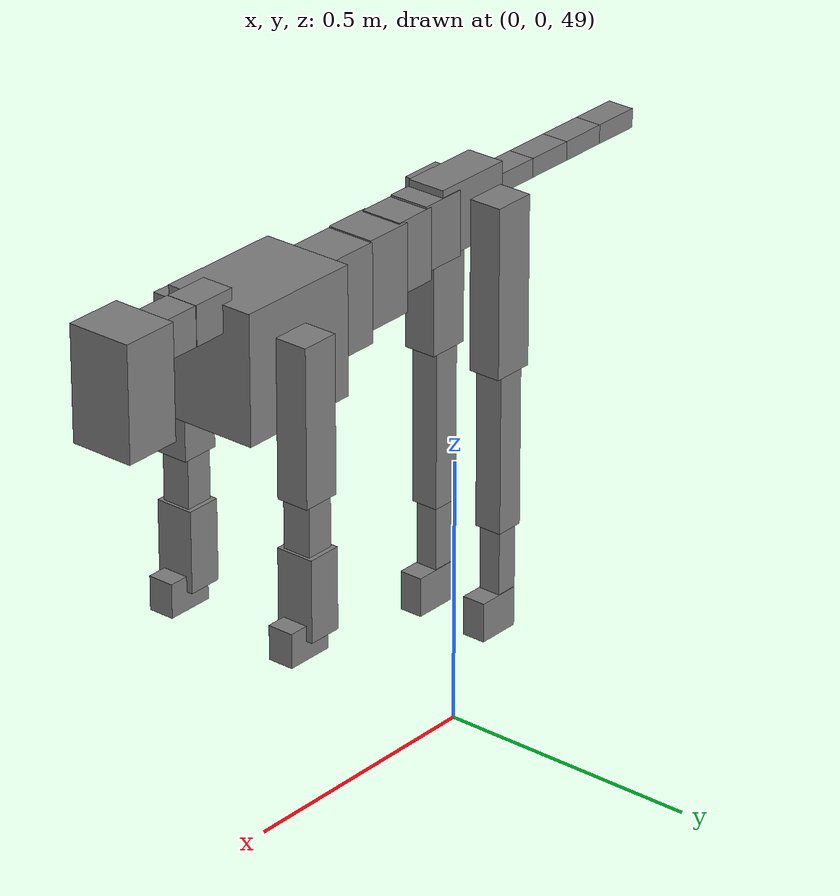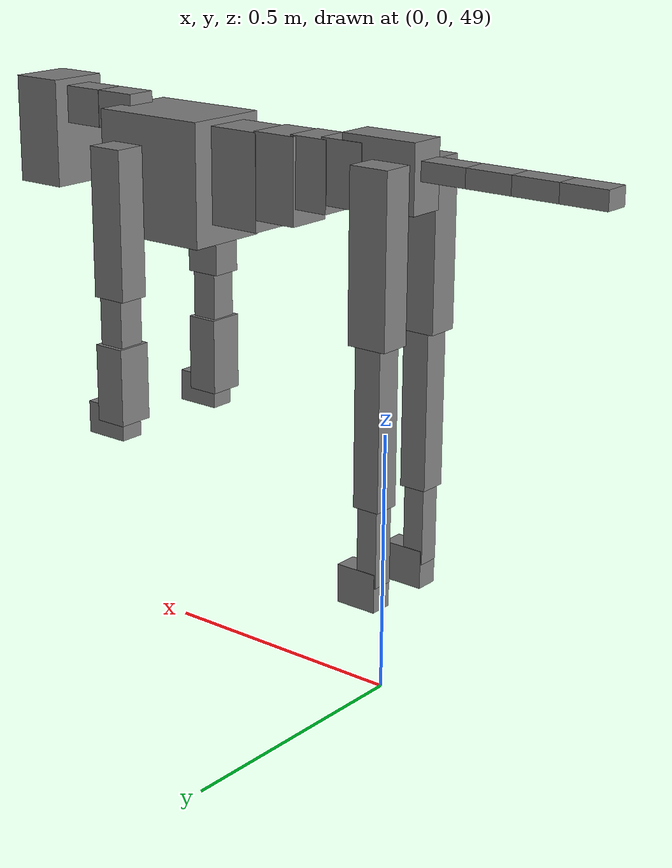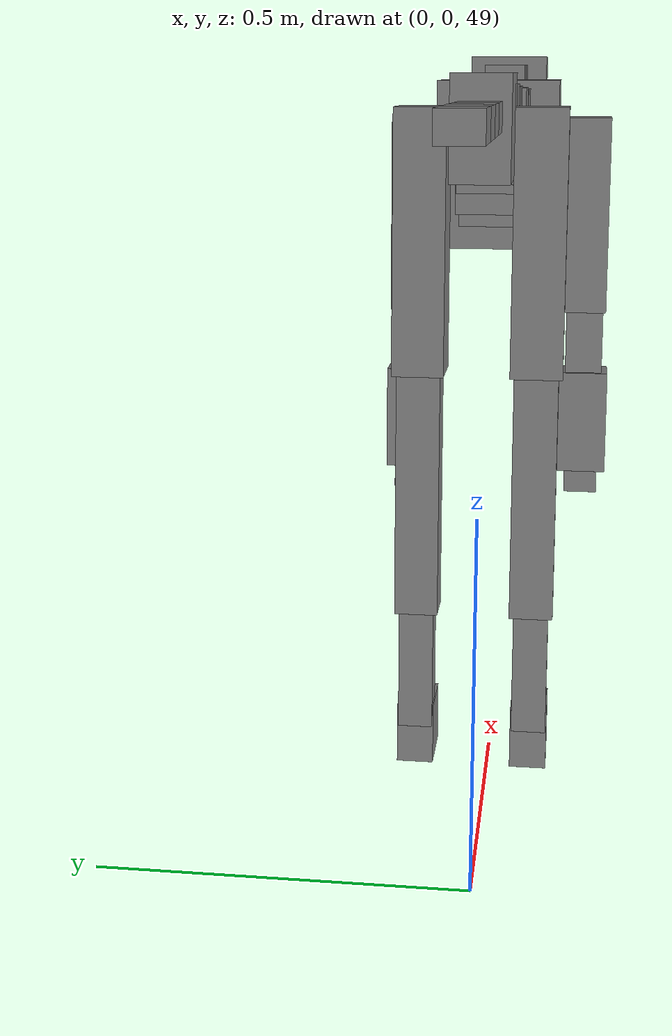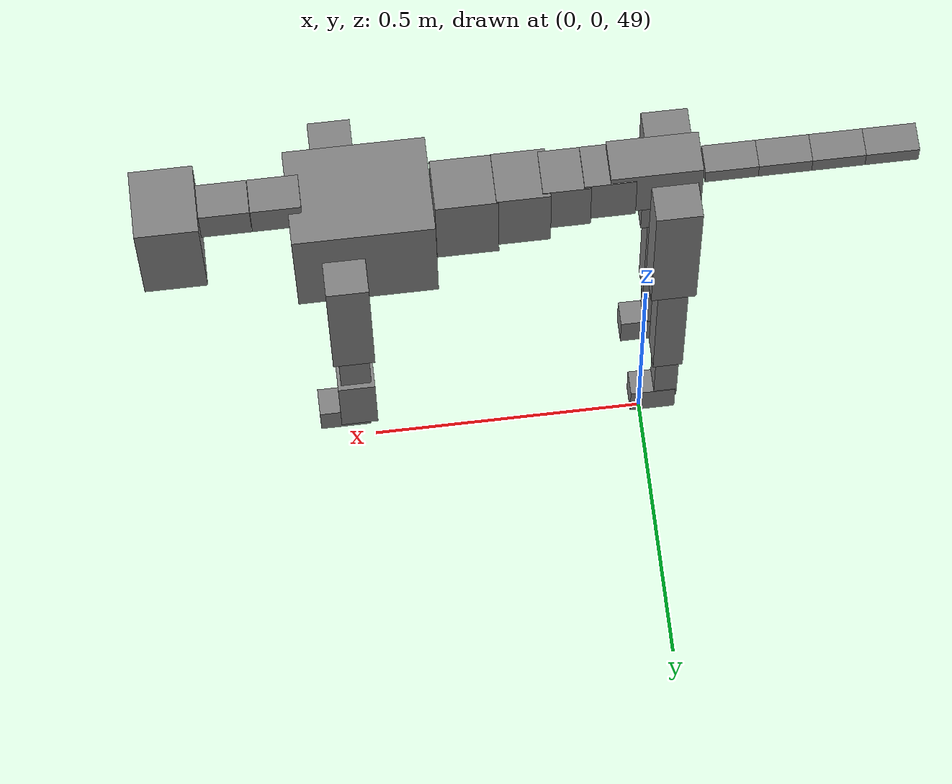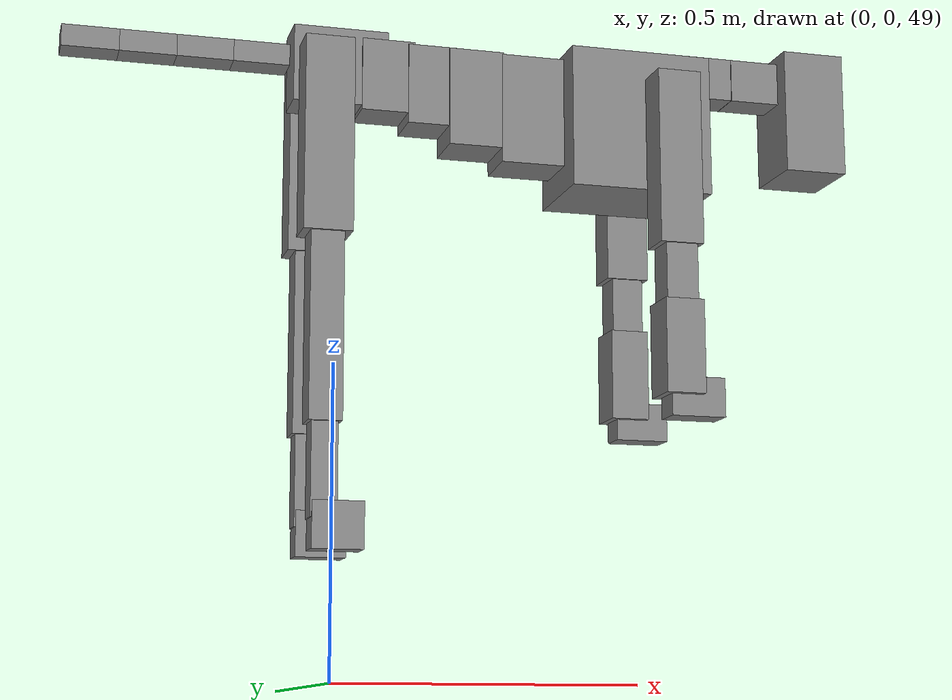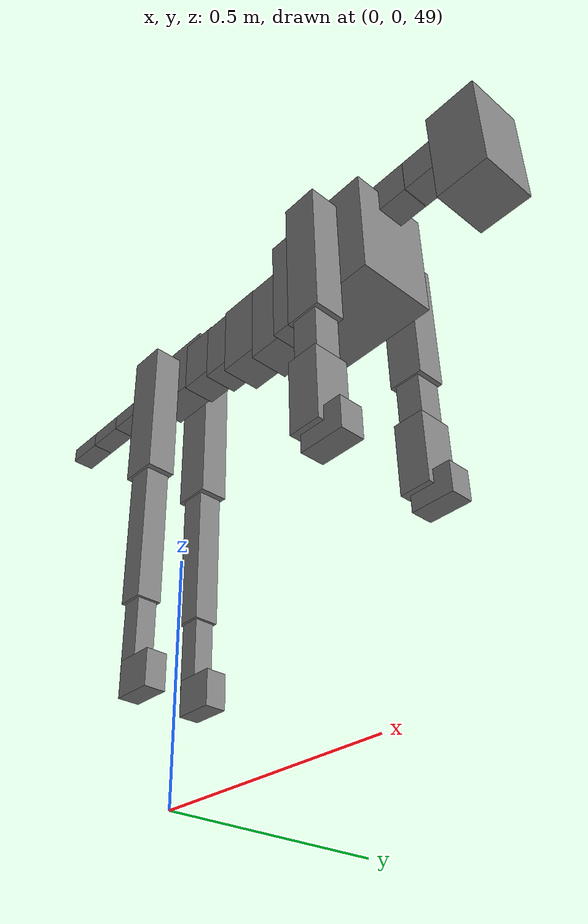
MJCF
<mujoco model="dog">

    <default>
        <joint armature="0.02" stiffness="1" damping="0.2" limited="true"/>
        <geom condim="3" friction="1 0.05 0.05" margin="0.01"/>
        <motor ctrllimited="true" ctrlrange="-1.0 1.0" forcelimited="true" gear="50"/>
    </default>

    <compiler inertiafromgeom="true" angle="radian"/>

    <option timestep="0.016" iterations="50" tolerance="1e-10" solver="Newton" jacobian="dense" cone="pyramidal"/>

    <size nconmax="20000" njmax="60000" nstack="5000000"/>
    <visual>
        <map force="0.1" zfar="30"/>
        <rgba haze="0.15 0.25 0.35 1"/>
        <quality shadowsize="2048"/>
        <global offwidth="800" offheight="800"/>
    </visual>

    <asset>
        <texture type="skybox" builtin="gradient" rgb1="0.3 0.5 0.7" rgb2="0 0 0" width="512" height="512"/>
        <texture name="texplane" type="2d" builtin="checker" rgb1=".2 .3 .4" rgb2=".1 0.15 0.2" width="512" height="512"
                 mark="cross" markrgb=".8 .8 .8"/>
        <texture name="texgeom" type="cube" builtin="flat" mark="cross" width="127" height="1278" rgb1="0.8 0.6 0.4"
                 rgb2="0.8 0.6 0.4" markrgb="1 1 1" random="0.01"/>

        <material name="matplane" reflectance="0.3" texture="texplane" texrepeat="1 1" texuniform="true"/>
        <material name="matgeom" texture="texgeom" texuniform="true" rgba="0.8 0.6 .4 1"/>
    </asset>

    <worldbody>
        <geom name="floor" pos="0 0 0" size="0 0 .25" type="plane" material="matplane" condim="3"/>

        <light directional="false" diffuse=".2 .2 .2" specular="0 0 0" pos="0 0 5" dir="0 0 -1" castshadow="false"/>
        <light mode="targetbodycom" target="torso" directional="false" diffuse=".8 .8 .8" specular="0.3 0.3 0.3"
               pos="0 0 4.0" dir="0 0 -1"/>

        <body name="root" pos="0 0 50">
            <freejoint name="root_1"/>
            <geom type="box" pos="0 0 -0.02" size="0.0774  0.0358  0.063" density="2030"/>

            <body name="spine1" pos="0.054 0 0">
                <joint name="spine1_y" axis="0 1 0" range="0 0.7" limited="true"/>
                <geom type="box" pos="0.02375 0 -0.03" size="0.04375  0.0375  0.05985" density="2030"/>

                <body name="spine2" pos="0.0612 0 0">
                    <joint name="spine2_y" axis="0 1 0" range="-0.15 0.15" limited="true"/>
                    <geom type="box" pos="0.03555  0  -0.04" size="0.04055  0.039  0.06615" density="2030"/>

                    <body name="spine3" pos="0.0730 0 0">
                        <joint name="spine3_y" axis="0 1 0" range="-0.15 0.15" limited="true"/>
                        <geom type="box" pos="0.03555  0  -0.057" size="0.04555  0.0445  0.081" density="2030"/>

                        <body name="spine4" pos="0.0780 0 0">
                            <joint name="spine4_y" axis="0 1 0" range="-0.15 0.15" limited="true"/>
                            <geom type="box" pos="0.05265  0  -0.07" size="0.05265  0.045  0.09135" density="2030"/>

                            <body name="torso" pos="0.1082 0 0">
                                <joint name="torso_y" axis="0 1 0" range="-0.15 0.15" limited="true"/>
                                <geom type="box" pos="0.11925  0  -0.085" size="0.11925  0.085  0.11745"
                                      density="2030"/>

                                <body name="neck1" pos="0.2160  0   0.0180">
                                    <joint name="neck1_y" axis="0 1 0" range="-1.2  -1" limited="true"/>
                                    <geom type="box" pos="0.0423  0  0" size="0.0423  0.03  0.036" density="2325"/>

                                    <body name="neck2" pos="0.0853  0  0">
                                        <joint name="neck2_y" axis="0 1 0" range="0.1  0" limited="true"/>
                                        <geom type="box" pos="0.0423  0  0" size="0.0423  0.03  0.036" density="2325"/>

                                        <body name="head" pos="0.0853  0  0">
                                            <joint name="head_y" axis="0 1 0" range="-0.3  -0.2" limited="true"/>
                                            <geom type="box" pos="0.0531  0  -0.055" size="0.0531  0.06  0.1044"
                                                  density="4030"/>

                                        </body>
                                    </body>
                                </body>

                                <body name="front_shoulder" pos="0.156  0   -0.0480">
                                    <joint name="front_shoulder_y" axis="0 1 0" range="-1 1.5" limited="true"/>
                                    <geom type="box" pos="0 0.13 -0.1168" size="0.0359  0.0307  0.1434" density="1158"/>
                                    <geom type="box" pos="0 -0.13 -0.1168" size="0.0359  0.0307  0.1434"
                                          density="1158"/>

                                    <body name="front_elbow" pos="0  0  -0.2335">
                                        <joint name="front_elbow_y" axis="0 1 0" range="-2 0" limited="true"/>
                                        <geom type="box" pos="0 0.13 -0.0659" size="0.0264  0.0270  0.0659"
                                              density="1081"/>
                                        <geom type="box" pos="0 -0.13 -0.0659" size="0.0264  0.0270  0.0659"
                                              density="1081"/>

                                        <body name="front_wrist" pos="0  0  -0.1318">
                                            <joint name="front_wrist_y" axis="0 1 0" range="-0.2 0" limited="true"/>
                                            <geom type="box" pos="0 0.13 -0.0625" size="0.0322  0.0358  0.0757"
                                                  density="1664"/>
                                            <geom type="box" pos="0 -0.13 -0.0625" size="0.0322  0.0358  0.0757"
                                                  density="1664"/>

                                            <body name="front_finger_end" pos="0  0  -0.1250">
                                                <joint name="front_finger_y" axis="0 1 0" range="-0.4 1"
                                                       limited="true"/>
                                                <geom type="box" pos="0.0242  0.13  -0.0165"
                                                      size="0.0445  0.0242  0.0315" density="1515"/>
                                                <geom type="box" pos="0.0242  -0.13  -0.0165"
                                                      size="0.0445  0.0242  0.0315" density="1515"/>

                                            </body>

                                        </body>
                                    </body>
                                </body>

                            </body>
                        </body>
                    </body>
                </body>
            </body>

            <body name="back_hip" pos="-0.03 0 -0.018">
                <joint name="back_hip_y" axis="0 1 0" range="-1.5 0.3" limited="true"/>
                <geom type="box" pos="0 0.07 -0.1347" size="0.0393  0.0309  0.1575" density="1154"/>
                <geom type="box" pos="0 -0.07 -0.1347" size="0.0393  0.0309  0.1575" density="1154"/>

                <body name="back_knee" pos="0  0  -0.2693">
                    <joint name="back_knee_y" axis="0 1 0" range="0 2.8" limited="true"/>
                    <geom type="box" pos="0 0.07 -0.1526" size="0.0266  0.0262  0.1681" density="1227"/>
                    <geom type="box" pos="0 -0.07 -0.1526" size="0.0266  0.0262  0.1681" density="1227"/>

                    <body name="back_ankle" pos="0  0  -0.3052">
                        <joint name="back_ankle_y" axis="0 1 0" range="-2.2 0" limited="true"/>
                        <geom type="box" pos="0 0.07 -0.0758" size="0.0209  0.0209  0.0870" density="1284"/>
                        <geom type="box" pos="0 -0.07 -0.0758" size="0.0209  0.0209  0.0870" density="1284"/>

                        <body name="back_toe_end" pos="0  0  -0.1516">
                            <joint name="back_toe_y" axis="0 1 0" range="-0.4 1" limited="true"/>
                            <geom type="box" pos="0.0222  0.07  -0.0219" size="0.0407  0.0222  0.0369" density="1515"/>
                            <geom type="box" pos="0.0222  -0.07  -0.0219" size="0.0407  0.0222  0.0369" density="1515"/>

                        </body>
                    </body>
                </body>
            </body>

            <body name="tail1" pos="-0.074 0 -0.006">
                <joint name="tail1_y" axis="0 1 0" range="-0.2 0.2" limited="true"/>
                <geom type="box" pos="-0.0536  0  0" size="0.045  0.025  0.0175" density="1587"/>

                <body name="tail2" pos="-0.09 0 0">
                    <joint name="tail2_y" axis="0 1 0" range="-0.2 0.2" limited="true"/>
                    <geom type="box" pos="-0.0536  0  0" size="0.045  0.025  0.0175" density="1587"/>

                    <body name="tail3" pos="-0.09 0 0">
                        <joint name="tail3_y" axis="0 1 0" range="-0.2 0.2" limited="true"/>
                        <geom type="box" pos="-0.0536  0  0" size="0.045  0.025  0.0175" density="1587"/>

                        <body name="tail4" pos="-0.09 0 0">
                            <joint name="tail4_y" axis="0 1 0" range="-0.2 0.2" limited="true"/>
                            <geom type="box" pos="-0.0536  0  0" size="0.045  0.025  0.0175" density="1587"/>

                        </body>
                    </body>
                </body>
            </body>
        </body>
    </worldbody>

    <actuator>
        <motor joint="spine1_y" forcerange="-150 150     "/>
        <motor joint="spine2_y" forcerange="-150 150     "/>
        <motor joint="spine3_y" forcerange="-150 150     "/>
        <motor joint="spine4_y" forcerange="-150 150     "/>
        <motor joint="torso_y" forcerange="-150 150     "/>
        <motor joint="neck1_y" forcerange="-100 100       "/>
        <motor joint="neck2_y" forcerange="-100 100       "/>
        <motor joint="head_y" forcerange="-150 150       "/>
        <motor joint="front_shoulder_y" forcerange="-171.55 133.16"/>
        <motor joint="front_elbow_y" forcerange="-111.40 185.20"/>
        <motor joint="front_wrist_y" forcerange="-147.95 138.62"/>
        <motor joint="front_finger_y" forcerange="-20.13 69.19"/>
        <motor joint="back_hip_y" forcerange="-399.95 211.43"/>
        <motor joint="back_knee_y" forcerange="-216.94 364.41"/>
        <motor joint="back_angle_y" forcerange="-93.31 141.62"/>
        <motor joint="back_toe_y" forcerange="-59.09 38.56"/>
        <motor joint="tail1_y" forcerange="-50 50     "/>
        <motor joint="tail2_y" forcerange="-50 50     "/>
        <motor joint="tail3_y" forcerange="-50 50     "/>
        <motor joint="tail4_y" forcerange="-50 50     "/>
    </actuator>
</mujoco>
